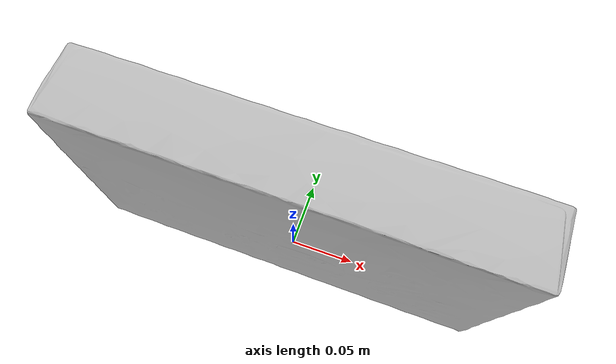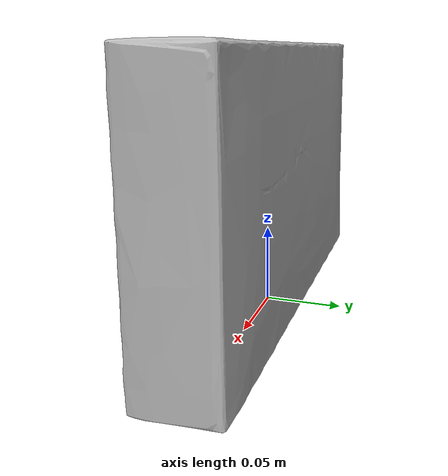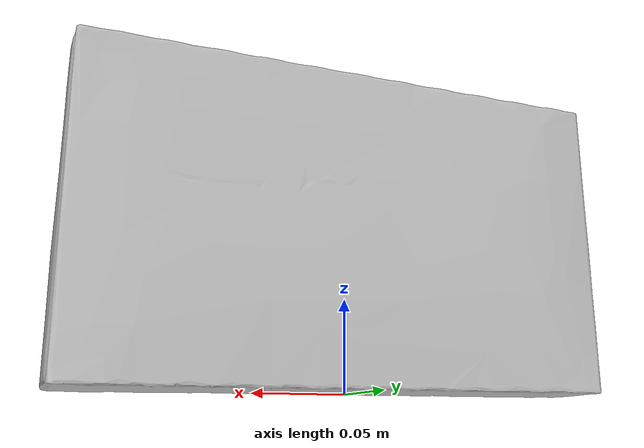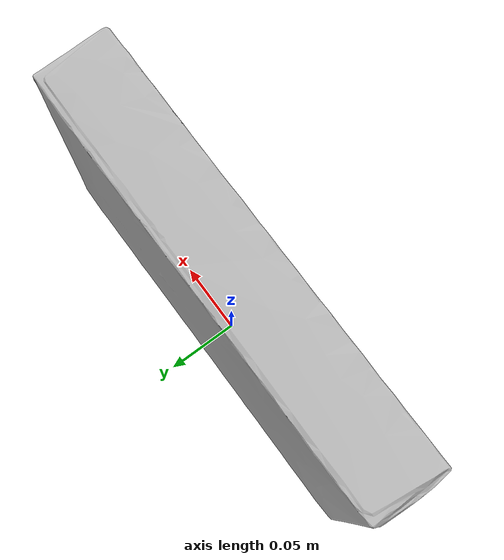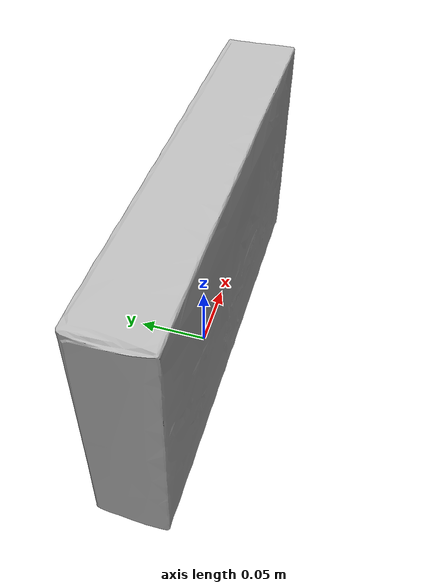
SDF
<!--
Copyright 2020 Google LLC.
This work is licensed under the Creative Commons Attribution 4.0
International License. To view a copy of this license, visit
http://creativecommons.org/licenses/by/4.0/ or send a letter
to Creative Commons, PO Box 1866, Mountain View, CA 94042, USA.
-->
<?xml version="1.0" ?>
<sdf version="1.6">
  <model name="Little_Debbie_Chocolate_Cupcakes_8_ct">
    <link name="link_0">
      <visual name="visual">
        <geometry>
          <mesh>
            <uri>model://Little_Debbie_Chocolate_Cupcakes_8_ct/meshes/model.obj</uri>
          </mesh>
        </geometry>
      </visual>
      <collision name="collision_0">
        <geometry>
          <mesh>
            <uri>model://Little_Debbie_Chocolate_Cupcakes_8_ct/meshes/model.obj</uri>
          </mesh>
        </geometry>
      </collision>
    </link>
  </model>
</sdf>
